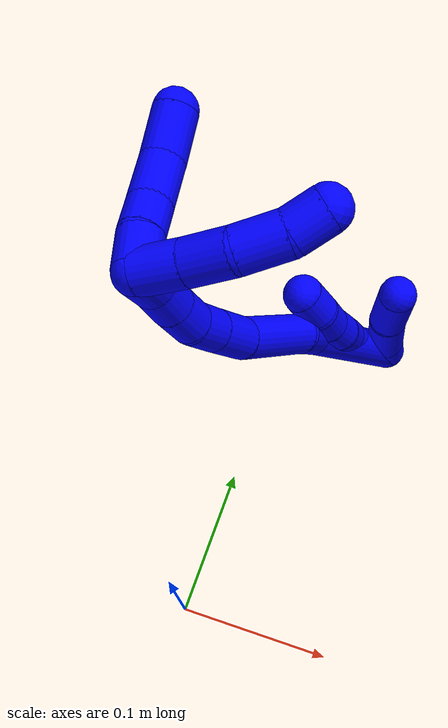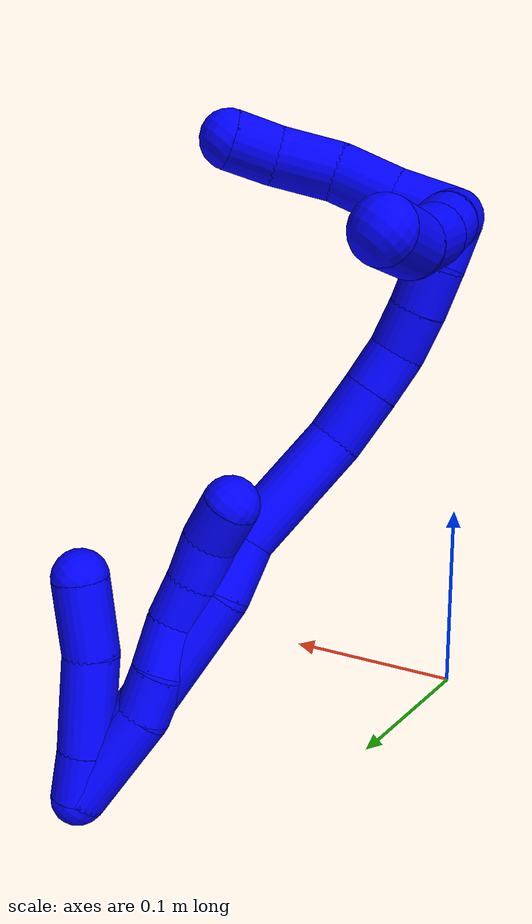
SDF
<sdf version="1.7">
 <world name="default">
  <plugin name="TubeGeneratorPlugin" filename="libtube_generator_plugin.so"/>
  <model name="photoneo_s_sensor">
   <static>1</static>
   <pose>0 0 2 1.57079 1.57079 3.14159</pose>
   <link name="link">
    <inertial><mass>0.1</mass></inertial>
    <sensor name="sensor" type="depth">
     <update_rate>30</update_rate>
     <camera>
      <horizontal_fov>1.22</horizontal_fov>
      <image><width>1920</width><height>1200</height><format>B8G8R8</format></image>
      <clip><near>0.1</near><far>4</far></clip>
      <depth_camera><output>points</output></depth_camera>
     </camera>
     <plugin name="camera_plugin" filename="libgazebo_ros_depth_camera.so">
      <baseline>0.2</baseline>
      <alwaysOn>1</alwaysOn>
      <updateRate>0.0</updateRate>
      <cameraName>camera_ir</cameraName>
      <imageTopicName>/camera/color/image_raw</imageTopicName>
      <cameraInfoTopicName>/camera/color/camera_info</cameraInfoTopicName>
      <depthImageTopicName>/camera/depth/image_raw</depthImageTopicName>
      <depthImageCameraInfoTopicName>/camera/depth/camera_info</depthImageCameraInfoTopicName>
      <pointCloudTopicName>/camera/depth/points</pointCloudTopicName>
      <frameName>fr_optical</frameName>
      <pointCloudCutoff>0.1</pointCloudCutoff>
      <pointCloudCutoffMax>2.0</pointCloudCutoffMax>
      <distortionK1>0</distortionK1>
      <distortionK2>0</distortionK2>
      <distortionK3>0</distortionK3>
      <distortionT1>0</distortionT1>
      <distortionT2>0</distortionT2>
      <CxPrime>0</CxPrime>
      <Cx>0</Cx>
      <Cy>0</Cy>
      <focalLength>0</focalLength>
      <hackBaseline>0</hackBaseline>
     </plugin>
    </sensor>
   </link>
  </model>
  <gravity>0 0 -9.8</gravity>
  <magnetic_field>6e-06 2.3e-05 -4.2e-05</magnetic_field>
  <atmosphere type="adiabatic"/>
  <physics name="default_physics" default="0" type="ode">
   <max_step_size>0.003</max_step_size>
   <real_time_factor>1</real_time_factor>
   <real_time_update_rate>1000</real_time_update_rate>
   <max_contacts>10000</max_contacts>
   <ode>
    <solver>
     <type>quick</type>
     <iters>100</iters>
     <sor>1.3</sor>
     <use_dynamic_moi_rescaling>0</use_dynamic_moi_rescaling>
    </solver>
    <constraints>
     <contact_max_correcting_vel>0</contact_max_correcting_vel>
     <contact_surface_layer>0.001</contact_surface_layer>
     <cfm>0</cfm>
     <erp>0.2</erp>
    </constraints>
   </ode>
  </physics>
  <scene><ambient>0.4 0.4 0.4 1</ambient><background>0.7 0.7 0.7 1</background><shadows>0</shadows></scene>
  <audio><device>default</device></audio>
  <spherical_coordinates>
   <surface_model>EARTH_WGS84</surface_model>
   <latitude_deg>0</latitude_deg>
   <longitude_deg>0</longitude_deg>
   <elevation>0</elevation>
   <heading_deg>0</heading_deg>
  </spherical_coordinates>
  <model name="bin">
   <static>1</static>
   <link name="bottom">
    <collision name="collision-bottom">
     <pose>0 0 -0.01 0 -0 0</pose>
     <geometry><box><size>0.8 0.6 0.02</size></box></geometry>
     <surface>
      <friction><ode><mu>100</mu><mu2>100</mu2></ode></friction>
      <contact><collide_bitmask>65535</collide_bitmask></contact>
     </surface>
    </collision>
   </link>
   <link name="west_wall">
    <collision name="collision-west_wall">
     <pose>-0.41 0 0.1 0 -0 0</pose>
     <geometry><box><size>0.02 0.6 0.2</size></box></geometry>
     <surface>
      <friction><ode><mu>100</mu><mu2>100</mu2></ode></friction>
      <contact><collide_bitmask>65535</collide_bitmask></contact>
     </surface>
    </collision>
   </link>
   <link name="east_wall">
    <collision name="collision-east_wall">
     <pose>0.41 0 0.1 0 -0 0</pose>
     <geometry><box><size>0.02 0.6 0.2</size></box></geometry>
     <surface>
      <friction><ode><mu>100</mu><mu2>100</mu2></ode></friction>
      <contact><collide_bitmask>65535</collide_bitmask></contact>
     </surface>
    </collision>
   </link>
   <link name="south_wall">
    <collision name="collision-south_wall">
     <pose>0 -0.31 0.1 0 -0 0</pose>
     <geometry><box><size>0.8 0.02 0.2</size></box></geometry>
     <surface>
      <friction><ode><mu>100</mu><mu2>100</mu2></ode></friction>
      <contact><collide_bitmask>65535</collide_bitmask></contact>
     </surface>
    </collision>
   </link>
   <link name="north_wall">
    <collision name="collision-north_wall">
     <pose>0 0.31 0.1 0 -0 0</pose>
     <geometry><box><size>0.8 0.02 0.2</size></box></geometry>
     <surface>
      <friction><ode><mu>100</mu><mu2>100</mu2></ode></friction>
      <contact><collide_bitmask>65535</collide_bitmask></contact>
     </surface>
    </collision>
   </link>
  </model>
  <model name="1">
   <static>0</static>
   <link name="1">
    <collision name="collision-cylinder-e_1_2_8">
     <pose>-0.001946 -0.00057 -0.023154 3.11698 -0.083811 -2.57068</pose>
     <geometry><cylinder><radius>0.0125</radius><length>0.046484</length></cylinder></geometry>
     <surface>
      <friction><ode><mu>1.16</mu><mu2>1.16</mu2><slip1>0</slip1><slip2>0</slip2></ode></friction>
      <contact><ode><kp>1e+06</kp><kd>1</kd><max_vel>0</max_vel><min_depth>0.001</min_depth></ode></contact>
     </surface>
    </collision>
    <visual name="visual-cylinder-e_1_2_8">
     <pose>-0.001946 -0.00057 -0.023154 3.11698 -0.083811 -2.57068</pose>
     <geometry><cylinder><radius>0.0125</radius><length>0.046484</length></cylinder></geometry>
     <material><ambient>0 0 1 1</ambient></material>
    </visual>
    <collision name="collision-cylinder-e_2_8_9">
     <pose>-0.006105 -0.00391 -0.05616 2.86751 -0.213002 -1.31889</pose>
     <geometry><cylinder><radius>0.0125</radius><length>0.020943</length></cylinder></geometry>
     <surface>
      <friction><ode><mu>1.16</mu><mu2>1.16</mu2><slip1>0</slip1><slip2>0</slip2></ode></friction>
      <contact><ode><kp>1e+06</kp><kd>1</kd><max_vel>0</max_vel><min_depth>0.001</min_depth></ode></contact>
     </surface>
    </collision>
    <visual name="visual-cylinder-e_2_8_9">
     <pose>-0.006105 -0.00391 -0.05616 2.86751 -0.213002 -1.31889</pose>
     <geometry><cylinder><radius>0.0125</radius><length>0.020943</length></cylinder></geometry>
     <material><ambient>0 0 1 1</ambient></material>
    </visual>
    <collision name="collision-cylinder-e_3_9_10">
     <pose>-0.009362 -0.010984 -0.076369 2.74777 -0.092739 -0.457074</pose>
     <geometry><cylinder><radius>0.0125</radius><length>0.022527</length></cylinder></geometry>
     <surface>
      <friction><ode><mu>1.16</mu><mu2>1.16</mu2><slip1>0</slip1><slip2>0</slip2></ode></friction>
      <contact><ode><kp>1e+06</kp><kd>1</kd><max_vel>0</max_vel><min_depth>0.001</min_depth></ode></contact>
     </surface>
    </collision>
    <visual name="visual-cylinder-e_3_9_10">
     <pose>-0.009362 -0.010984 -0.076369 2.74777 -0.092739 -0.457074</pose>
     <geometry><cylinder><radius>0.0125</radius><length>0.022527</length></cylinder></geometry>
     <material><ambient>0 0 1 1</ambient></material>
    </visual>
    <collision name="collision-cylinder-e_4_10_11">
     <pose>-0.012641 -0.017098 -0.096312 2.95487 -0.225356 -1.75906</pose>
     <geometry><cylinder><radius>0.0125</radius><length>0.020016</length></cylinder></geometry>
     <surface>
      <friction><ode><mu>1.16</mu><mu2>1.16</mu2><slip1>0</slip1><slip2>0</slip2></ode></friction>
      <contact><ode><kp>1e+06</kp><kd>1</kd><max_vel>0</max_vel><min_depth>0.001</min_depth></ode></contact>
     </surface>
    </collision>
    <visual name="visual-cylinder-e_4_10_11">
     <pose>-0.012641 -0.017098 -0.096312 2.95487 -0.225356 -1.75906</pose>
     <geometry><cylinder><radius>0.0125</radius><length>0.020016</length></cylinder></geometry>
     <material><ambient>0 0 1 1</ambient></material>
    </visual>
    <collision name="collision-cylinder-e_5_11_12">
     <pose>-0.018052 -0.021183 -0.115109 2.89961 -0.322832 -1.85885</pose>
     <geometry><cylinder><radius>0.0125</radius><length>0.020011</length></cylinder></geometry>
     <surface>
      <friction><ode><mu>1.16</mu><mu2>1.16</mu2><slip1>0</slip1><slip2>0</slip2></ode></friction>
      <contact><ode><kp>1e+06</kp><kd>1</kd><max_vel>0</max_vel><min_depth>0.001</min_depth></ode></contact>
     </surface>
    </collision>
    <visual name="visual-cylinder-e_5_11_12">
     <pose>-0.018052 -0.021183 -0.115109 2.89961 -0.322832 -1.85885</pose>
     <geometry><cylinder><radius>0.0125</radius><length>0.020011</length></cylinder></geometry>
     <material><ambient>0 0 1 1</ambient></material>
    </visual>
    <collision name="collision-cylinder-e_6_12_6">
     <pose>-0.025838 -0.023355 -0.133204 -3.13024 -0.478888 3.09508</pose>
     <geometry><cylinder><radius>0.0125</radius><length>0.020018</length></cylinder></geometry>
     <surface>
      <friction><ode><mu>1.16</mu><mu2>1.16</mu2><slip1>0</slip1><slip2>0</slip2></ode></friction>
      <contact><ode><kp>1e+06</kp><kd>1</kd><max_vel>0</max_vel><min_depth>0.001</min_depth></ode></contact>
     </surface>
    </collision>
    <visual name="visual-cylinder-e_6_12_6">
     <pose>-0.025838 -0.023355 -0.133204 -3.13024 -0.478888 3.09508</pose>
     <geometry><cylinder><radius>0.0125</radius><length>0.020018</length></cylinder></geometry>
     <material><ambient>0 0 1 1</ambient></material>
    </visual>
    <collision name="collision-cylinder-e_1_2_13">
     <pose>-0.003365 -0.004861 -0.009448 2.66637 -0.306687 -1.13603</pose>
     <geometry><cylinder><radius>0.0125</radius><length>0.022291</length></cylinder></geometry>
     <surface>
      <friction><ode><mu>1.16</mu><mu2>1.16</mu2><slip1>0</slip1><slip2>0</slip2></ode></friction>
      <contact><ode><kp>1e+06</kp><kd>1</kd><max_vel>0</max_vel><min_depth>0.001</min_depth></ode></contact>
     </surface>
    </collision>
    <visual name="visual-cylinder-e_1_2_13">
     <pose>-0.003365 -0.004861 -0.009448 2.66637 -0.306687 -1.13603</pose>
     <geometry><cylinder><radius>0.0125</radius><length>0.022291</length></cylinder></geometry>
     <material><ambient>0 0 1 1</ambient></material>
    </visual>
    <collision name="collision-cylinder-e_2_13_14">
     <pose>-0.013933 -0.020435 -0.036323 2.59043 -0.338599 -1.08743</pose>
     <geometry><cylinder><radius>0.0125</radius><length>0.043375</length></cylinder></geometry>
     <surface>
      <friction><ode><mu>1.16</mu><mu2>1.16</mu2><slip1>0</slip1><slip2>0</slip2></ode></friction>
      <contact><ode><kp>1e+06</kp><kd>1</kd><max_vel>0</max_vel><min_depth>0.001</min_depth></ode></contact>
     </surface>
    </collision>
    <visual name="visual-cylinder-e_2_13_14">
     <pose>-0.013933 -0.020435 -0.036323 2.59043 -0.338599 -1.08743</pose>
     <geometry><cylinder><radius>0.0125</radius><length>0.043375</length></cylinder></geometry>
     <material><ambient>0 0 1 1</ambient></material>
    </visual>
    <collision name="collision-cylinder-e_3_14_5">
     <pose>-0.028731 -0.041191 -0.065419 2.43095 -0.458218 -1.12216</pose>
     <geometry><cylinder><radius>0.0125</radius><length>0.034334</length></cylinder></geometry>
     <surface>
      <friction><ode><mu>1.16</mu><mu2>1.16</mu2><slip1>0</slip1><slip2>0</slip2></ode></friction>
      <contact><ode><kp>1e+06</kp><kd>1</kd><max_vel>0</max_vel><min_depth>0.001</min_depth></ode></contact>
     </surface>
    </collision>
    <visual name="visual-cylinder-e_3_14_5">
     <pose>-0.028731 -0.041191 -0.065419 2.43095 -0.458218 -1.12216</pose>
     <geometry><cylinder><radius>0.0125</radius><length>0.034334</length></cylinder></geometry>
     <material><ambient>0 0 1 1</ambient></material>
    </visual>
    <collision name="collision-cylinder-e_1_2_15">
     <pose>-0.003349 -0.004188 -0.054208 3.06449 -0.061513 -1.3466</pose>
     <geometry><cylinder><radius>0.0125</radius><length>0.108945</length></cylinder></geometry>
     <surface>
      <friction><ode><mu>1.16</mu><mu2>1.16</mu2><slip1>0</slip1><slip2>0</slip2></ode></friction>
      <contact><ode><kp>1e+06</kp><kd>1</kd><max_vel>0</max_vel><min_depth>0.001</min_depth></ode></contact>
     </surface>
    </collision>
    <visual name="visual-cylinder-e_1_2_15">
     <pose>-0.003349 -0.004188 -0.054208 3.06449 -0.061513 -1.3466</pose>
     <geometry><cylinder><radius>0.0125</radius><length>0.108945</length></cylinder></geometry>
     <material><ambient>0 0 1 1</ambient></material>
    </visual>
    <collision name="collision-cylinder-e_2_15_16">
     <pose>-0.006759 -0.012553 -0.120997 2.82105 -0.004677 -0.028927</pose>
     <geometry><cylinder><radius>0.0125</radius><length>0.026513</length></cylinder></geometry>
     <surface>
      <friction><ode><mu>1.16</mu><mu2>1.16</mu2><slip1>0</slip1><slip2>0</slip2></ode></friction>
      <contact><ode><kp>1e+06</kp><kd>1</kd><max_vel>0</max_vel><min_depth>0.001</min_depth></ode></contact>
     </surface>
    </collision>
    <visual name="visual-cylinder-e_2_15_16">
     <pose>-0.006759 -0.012553 -0.120997 2.82105 -0.004677 -0.028927</pose>
     <geometry><cylinder><radius>0.0125</radius><length>0.026513</length></cylinder></geometry>
     <material><ambient>0 0 1 1</ambient></material>
    </visual>
    <collision name="collision-cylinder-e_3_16_17">
     <pose>-0.004109 -0.017092 -0.162267 3.12897 0.094247 2.87542</pose>
     <geometry><cylinder><radius>0.0125</radius><length>0.05764</length></cylinder></geometry>
     <surface>
      <friction><ode><mu>1.16</mu><mu2>1.16</mu2><slip1>0</slip1><slip2>0</slip2></ode></friction>
      <contact><ode><kp>1e+06</kp><kd>1</kd><max_vel>0</max_vel><min_depth>0.001</min_depth></ode></contact>
     </surface>
    </collision>
    <visual name="visual-cylinder-e_3_16_17">
     <pose>-0.004109 -0.017092 -0.162267 3.12897 0.094247 2.87542</pose>
     <geometry><cylinder><radius>0.0125</radius><length>0.05764</length></cylinder></geometry>
     <material><ambient>0 0 1 1</ambient></material>
    </visual>
    <collision name="collision-cylinder-e_4_17_18">
     <pose>-0.003073 -0.018082 -0.204228 3.09429 -0.125504 -2.4214</pose>
     <geometry><cylinder><radius>0.0125</radius><length>0.026782</length></cylinder></geometry>
     <surface>
      <friction><ode><mu>1.16</mu><mu2>1.16</mu2><slip1>0</slip1><slip2>0</slip2></ode></friction>
      <contact><ode><kp>1e+06</kp><kd>1</kd><max_vel>0</max_vel><min_depth>0.001</min_depth></ode></contact>
     </surface>
    </collision>
    <visual name="visual-cylinder-e_4_17_18">
     <pose>-0.003073 -0.018082 -0.204228 3.09429 -0.125504 -2.4214</pose>
     <geometry><cylinder><radius>0.0125</radius><length>0.026782</length></cylinder></geometry>
     <material><ambient>0 0 1 1</ambient></material>
    </visual>
    <collision name="collision-cylinder-e_5_18_19">
     <pose>-0.006222 -0.019421 -0.227394 3.06993 -0.147397 -2.23765</pose>
     <geometry><cylinder><radius>0.0125</radius><length>0.02006</length></cylinder></geometry>
     <surface>
      <friction><ode><mu>1.16</mu><mu2>1.16</mu2><slip1>0</slip1><slip2>0</slip2></ode></friction>
      <contact><ode><kp>1e+06</kp><kd>1</kd><max_vel>0</max_vel><min_depth>0.001</min_depth></ode></contact>
     </surface>
    </collision>
    <visual name="visual-cylinder-e_5_18_19">
     <pose>-0.006222 -0.019421 -0.227394 3.06993 -0.147397 -2.23765</pose>
     <geometry><cylinder><radius>0.0125</radius><length>0.02006</length></cylinder></geometry>
     <material><ambient>0 0 1 1</ambient></material>
    </visual>
    <collision name="collision-cylinder-e_6_19_20">
     <pose>-0.011613 -0.021351 -0.246425 3.00886 -0.401951 -2.51087</pose>
     <geometry><cylinder><radius>0.0125</radius><length>0.020028</length></cylinder></geometry>
     <surface>
      <friction><ode><mu>1.16</mu><mu2>1.16</mu2><slip1>0</slip1><slip2>0</slip2></ode></friction>
      <contact><ode><kp>1e+06</kp><kd>1</kd><max_vel>0</max_vel><min_depth>0.001</min_depth></ode></contact>
     </surface>
    </collision>
    <visual name="visual-cylinder-e_6_19_20">
     <pose>-0.011613 -0.021351 -0.246425 3.00886 -0.401951 -2.51087</pose>
     <geometry><cylinder><radius>0.0125</radius><length>0.020028</length></cylinder></geometry>
     <material><ambient>0 0 1 1</ambient></material>
    </visual>
    <collision name="collision-cylinder-e_7_20_21">
     <pose>-0.019744 -0.024367 -0.264459 2.94244 -0.434521 -2.29159</pose>
     <geometry><cylinder><radius>0.0125</radius><length>0.020017</length></cylinder></geometry>
     <surface>
      <friction><ode><mu>1.16</mu><mu2>1.16</mu2><slip1>0</slip1><slip2>0</slip2></ode></friction>
      <contact><ode><kp>1e+06</kp><kd>1</kd><max_vel>0</max_vel><min_depth>0.001</min_depth></ode></contact>
     </surface>
    </collision>
    <visual name="visual-cylinder-e_7_20_21">
     <pose>-0.019744 -0.024367 -0.264459 2.94244 -0.434521 -2.29159</pose>
     <geometry><cylinder><radius>0.0125</radius><length>0.020017</length></cylinder></geometry>
     <material><ambient>0 0 1 1</ambient></material>
    </visual>
    <collision name="collision-cylinder-e_8_21_1">
     <pose>-0.026602 -0.028808 -0.28264 2.86393 -0.267445 -1.53285</pose>
     <geometry><cylinder><radius>0.0125</radius><length>0.020016</length></cylinder></geometry>
     <surface>
      <friction><ode><mu>1.16</mu><mu2>1.16</mu2><slip1>0</slip1><slip2>0</slip2></ode></friction>
      <contact><ode><kp>1e+06</kp><kd>1</kd><max_vel>0</max_vel><min_depth>0.001</min_depth></ode></contact>
     </surface>
    </collision>
    <visual name="visual-cylinder-e_8_21_1">
     <pose>-0.026602 -0.028808 -0.28264 2.86393 -0.267445 -1.53285</pose>
     <geometry><cylinder><radius>0.0125</radius><length>0.020016</length></cylinder></geometry>
     <material><ambient>0 0 1 1</ambient></material>
    </visual>
    <collision name="collision-cylinder-e_1_1_22">
     <pose>-0.032132 -0.043588 -0.28747 1.21906 -0.219607 -0.15365</pose>
     <geometry><cylinder><radius>0.0125</radius><length>0.026486</length></cylinder></geometry>
     <surface>
      <friction><ode><mu>1.16</mu><mu2>1.16</mu2><slip1>0</slip1><slip2>0</slip2></ode></friction>
      <contact><ode><kp>1e+06</kp><kd>1</kd><max_vel>0</max_vel><min_depth>0.001</min_depth></ode></contact>
     </surface>
    </collision>
    <visual name="visual-cylinder-e_1_1_22">
     <pose>-0.032132 -0.043588 -0.28747 1.21906 -0.219607 -0.15365</pose>
     <geometry><cylinder><radius>0.0125</radius><length>0.026486</length></cylinder></geometry>
     <material><ambient>0 0 1 1</ambient></material>
    </visual>
    <collision name="collision-cylinder-e_2_22_23">
     <pose>-0.038242 -0.067987 -0.279749 1.31044 -0.248832 -0.191625</pose>
     <geometry><cylinder><radius>0.0125</radius><length>0.026195</length></cylinder></geometry>
     <surface>
      <friction><ode><mu>1.16</mu><mu2>1.16</mu2><slip1>0</slip1><slip2>0</slip2></ode></friction>
      <contact><ode><kp>1e+06</kp><kd>1</kd><max_vel>0</max_vel><min_depth>0.001</min_depth></ode></contact>
     </surface>
    </collision>
    <visual name="visual-cylinder-e_2_22_23">
     <pose>-0.038242 -0.067987 -0.279749 1.31044 -0.248832 -0.191625</pose>
     <geometry><cylinder><radius>0.0125</radius><length>0.026195</length></cylinder></geometry>
     <material><ambient>0 0 1 1</ambient></material>
    </visual>
    <collision name="collision-cylinder-e_3_23_24">
     <pose>-0.046251 -0.091199 -0.270575 1.07597 -0.367184 -0.220692</pose>
     <geometry><cylinder><radius>0.0125</radius><length>0.02665</length></cylinder></geometry>
     <surface>
      <friction><ode><mu>1.16</mu><mu2>1.16</mu2><slip1>0</slip1><slip2>0</slip2></ode></friction>
      <contact><ode><kp>1e+06</kp><kd>1</kd><max_vel>0</max_vel><min_depth>0.001</min_depth></ode></contact>
     </surface>
    </collision>
    <visual name="visual-cylinder-e_3_23_24">
     <pose>-0.046251 -0.091199 -0.270575 1.07597 -0.367184 -0.220692</pose>
     <geometry><cylinder><radius>0.0125</radius><length>0.02665</length></cylinder></geometry>
     <material><ambient>0 0 1 1</ambient></material>
    </visual>
    <collision name="collision-cylinder-e_4_24_4">
     <pose>-0.057113 -0.109369 -0.260466 1.04387 -0.628708 -0.369723</pose>
     <geometry><cylinder><radius>0.0125</radius><length>0.020669</length></cylinder></geometry>
     <surface>
      <friction><ode><mu>1.16</mu><mu2>1.16</mu2><slip1>0</slip1><slip2>0</slip2></ode></friction>
      <contact><ode><kp>1e+06</kp><kd>1</kd><max_vel>0</max_vel><min_depth>0.001</min_depth></ode></contact>
     </surface>
    </collision>
    <visual name="visual-cylinder-e_4_24_4">
     <pose>-0.057113 -0.109369 -0.260466 1.04387 -0.628708 -0.369723</pose>
     <geometry><cylinder><radius>0.0125</radius><length>0.020669</length></cylinder></geometry>
     <material><ambient>0 0 1 1</ambient></material>
    </visual>
    <collision name="collision-cylinder-e_1_1_25">
     <pose>-0.038791 -0.028096 -0.287736 -0.676015 -1.05855 0.405559</pose>
     <geometry><cylinder><radius>0.0125</radius><length>0.021898</length></cylinder></geometry>
     <surface>
      <friction><ode><mu>1.16</mu><mu2>1.16</mu2><slip1>0</slip1><slip2>0</slip2></ode></friction>
      <contact><ode><kp>1e+06</kp><kd>1</kd><max_vel>0</max_vel><min_depth>0.001</min_depth></ode></contact>
     </surface>
    </collision>
    <visual name="visual-cylinder-e_1_1_25">
     <pose>-0.038791 -0.028096 -0.287736 -0.676015 -1.05855 0.405559</pose>
     <geometry><cylinder><radius>0.0125</radius><length>0.021898</length></cylinder></geometry>
     <material><ambient>0 0 1 1</ambient></material>
    </visual>
    <collision name="collision-cylinder-e_2_25_26">
     <pose>-0.05638 -0.021786 -0.278227 -0.506423 -0.92308 0.255996</pose>
     <geometry><cylinder><radius>0.0125</radius><length>0.020177</length></cylinder></geometry>
     <surface>
      <friction><ode><mu>1.16</mu><mu2>1.16</mu2><slip1>0</slip1><slip2>0</slip2></ode></friction>
      <contact><ode><kp>1e+06</kp><kd>1</kd><max_vel>0</max_vel><min_depth>0.001</min_depth></ode></contact>
     </surface>
    </collision>
    <visual name="visual-cylinder-e_2_25_26">
     <pose>-0.05638 -0.021786 -0.278227 -0.506423 -0.92308 0.255996</pose>
     <geometry><cylinder><radius>0.0125</radius><length>0.020177</length></cylinder></geometry>
     <material><ambient>0 0 1 1</ambient></material>
    </visual>
    <collision name="collision-cylinder-e_3_26_27">
     <pose>-0.076775 -0.015656 -0.266104 -0.43715 -1.02471 0.248581</pose>
     <geometry><cylinder><radius>0.0125</radius><length>0.028903</length></cylinder></geometry>
     <surface>
      <friction><ode><mu>1.16</mu><mu2>1.16</mu2><slip1>0</slip1><slip2>0</slip2></ode></friction>
      <contact><ode><kp>1e+06</kp><kd>1</kd><max_vel>0</max_vel><min_depth>0.001</min_depth></ode></contact>
     </surface>
    </collision>
    <visual name="visual-cylinder-e_3_26_27">
     <pose>-0.076775 -0.015656 -0.266104 -0.43715 -1.02471 0.248581</pose>
     <geometry><cylinder><radius>0.0125</radius><length>0.028903</length></cylinder></geometry>
     <material><ambient>0 0 1 1</ambient></material>
    </visual>
    <collision name="collision-cylinder-e_4_27_3">
     <pose>-0.103085 -0.012166 -0.25536 -0.078983 -1.29458 0.05972</pose>
     <geometry><cylinder><radius>0.0125</radius><length>0.029022</length></cylinder></geometry>
     <surface>
      <friction><ode><mu>1.16</mu><mu2>1.16</mu2><slip1>0</slip1><slip2>0</slip2></ode></friction>
      <contact><ode><kp>1e+06</kp><kd>1</kd><max_vel>0</max_vel><min_depth>0.001</min_depth></ode></contact>
     </surface>
    </collision>
    <visual name="visual-cylinder-e_4_27_3">
     <pose>-0.103085 -0.012166 -0.25536 -0.078983 -1.29458 0.05972</pose>
     <geometry><cylinder><radius>0.0125</radius><length>0.029022</length></cylinder></geometry>
     <material><ambient>0 0 1 1</ambient></material>
    </visual>
    <collision name="collision-sphere-3">
     <pose>-0.117046 -0.011854 -0.251415 0 -0 0</pose>
     <geometry><sphere><radius>0.0125</radius></sphere></geometry>
     <surface>
      <friction><ode><mu>1.16</mu><mu2>1.16</mu2><slip1>0</slip1><slip2>0</slip2></ode></friction>
      <contact><ode><kp>1e+06</kp><kd>1</kd><max_vel>0</max_vel><min_depth>0.001</min_depth></ode></contact>
     </surface>
    </collision>
    <visual name="visual-sphere-3">
     <pose>-0.117046 -0.011854 -0.251415 0 -0 0</pose>
     <geometry><sphere><radius>0.0125</radius></sphere></geometry>
     <material><ambient>0 0 1 1</ambient></material>
    </visual>
    <collision name="collision-sphere-27">
     <pose>-0.089124 -0.012478 -0.259305 0 -0 0</pose>
     <geometry><sphere><radius>0.0125</radius></sphere></geometry>
     <surface>
      <friction><ode><mu>1.16</mu><mu2>1.16</mu2><slip1>0</slip1><slip2>0</slip2></ode></friction>
      <contact><ode><kp>1e+06</kp><kd>1</kd><max_vel>0</max_vel><min_depth>0.001</min_depth></ode></contact>
     </surface>
    </collision>
    <visual name="visual-sphere-27">
     <pose>-0.089124 -0.012478 -0.259305 0 -0 0</pose>
     <geometry><sphere><radius>0.0125</radius></sphere></geometry>
     <material><ambient>0 0 1 1</ambient></material>
    </visual>
    <collision name="collision-sphere-26">
     <pose>-0.064425 -0.018833 -0.272904 0 -0 0</pose>
     <geometry><sphere><radius>0.0125</radius></sphere></geometry>
     <surface>
      <friction><ode><mu>1.16</mu><mu2>1.16</mu2><slip1>0</slip1><slip2>0</slip2></ode></friction>
      <contact><ode><kp>1e+06</kp><kd>1</kd><max_vel>0</max_vel><min_depth>0.001</min_depth></ode></contact>
     </surface>
    </collision>
    <visual name="visual-sphere-26">
     <pose>-0.064425 -0.018833 -0.272904 0 -0 0</pose>
     <geometry><sphere><radius>0.0125</radius></sphere></geometry>
     <material><ambient>0 0 1 1</ambient></material>
    </visual>
    <collision name="collision-sphere-25">
     <pose>-0.048334 -0.024739 -0.28355 0 -0 0</pose>
     <geometry><sphere><radius>0.0125</radius></sphere></geometry>
     <surface>
      <friction><ode><mu>1.16</mu><mu2>1.16</mu2><slip1>0</slip1><slip2>0</slip2></ode></friction>
      <contact><ode><kp>1e+06</kp><kd>1</kd><max_vel>0</max_vel><min_depth>0.001</min_depth></ode></contact>
     </surface>
    </collision>
    <visual name="visual-sphere-25">
     <pose>-0.048334 -0.024739 -0.28355 0 -0 0</pose>
     <geometry><sphere><radius>0.0125</radius></sphere></geometry>
     <material><ambient>0 0 1 1</ambient></material>
    </visual>
    <collision name="collision-sphere-4">
     <pose>-0.06319 -0.116593 -0.256263 0 -0 0</pose>
     <geometry><sphere><radius>0.0125</radius></sphere></geometry>
     <surface>
      <friction><ode><mu>1.16</mu><mu2>1.16</mu2><slip1>0</slip1><slip2>0</slip2></ode></friction>
      <contact><ode><kp>1e+06</kp><kd>1</kd><max_vel>0</max_vel><min_depth>0.001</min_depth></ode></contact>
     </surface>
    </collision>
    <visual name="visual-sphere-4">
     <pose>-0.06319 -0.116593 -0.256263 0 -0 0</pose>
     <geometry><sphere><radius>0.0125</radius></sphere></geometry>
     <material><ambient>0 0 1 1</ambient></material>
    </visual>
    <collision name="collision-sphere-24">
     <pose>-0.051035 -0.102144 -0.264669 0 -0 0</pose>
     <geometry><sphere><radius>0.0125</radius></sphere></geometry>
     <surface>
      <friction><ode><mu>1.16</mu><mu2>1.16</mu2><slip1>0</slip1><slip2>0</slip2></ode></friction>
      <contact><ode><kp>1e+06</kp><kd>1</kd><max_vel>0</max_vel><min_depth>0.001</min_depth></ode></contact>
     </surface>
    </collision>
    <visual name="visual-sphere-24">
     <pose>-0.051035 -0.102144 -0.264669 0 -0 0</pose>
     <geometry><sphere><radius>0.0125</radius></sphere></geometry>
     <material><ambient>0 0 1 1</ambient></material>
    </visual>
    <collision name="collision-sphere-23">
     <pose>-0.041468 -0.080254 -0.276481 0 -0 0</pose>
     <geometry><sphere><radius>0.0125</radius></sphere></geometry>
     <surface>
      <friction><ode><mu>1.16</mu><mu2>1.16</mu2><slip1>0</slip1><slip2>0</slip2></ode></friction>
      <contact><ode><kp>1e+06</kp><kd>1</kd><max_vel>0</max_vel><min_depth>0.001</min_depth></ode></contact>
     </surface>
    </collision>
    <visual name="visual-sphere-23">
     <pose>-0.041468 -0.080254 -0.276481 0 -0 0</pose>
     <geometry><sphere><radius>0.0125</radius></sphere></geometry>
     <material><ambient>0 0 1 1</ambient></material>
    </visual>
    <collision name="collision-sphere-22">
     <pose>-0.035017 -0.055721 -0.283017 0 -0 0</pose>
     <geometry><sphere><radius>0.0125</radius></sphere></geometry>
     <surface>
      <friction><ode><mu>1.16</mu><mu2>1.16</mu2><slip1>0</slip1><slip2>0</slip2></ode></friction>
      <contact><ode><kp>1e+06</kp><kd>1</kd><max_vel>0</max_vel><min_depth>0.001</min_depth></ode></contact>
     </surface>
    </collision>
    <visual name="visual-sphere-22">
     <pose>-0.035017 -0.055721 -0.283017 0 -0 0</pose>
     <geometry><sphere><radius>0.0125</radius></sphere></geometry>
     <material><ambient>0 0 1 1</ambient></material>
    </visual>
    <collision name="collision-sphere-1">
     <pose>-0.029247 -0.031454 -0.291923 0 -0 0</pose>
     <geometry><sphere><radius>0.0125</radius></sphere></geometry>
     <surface>
      <friction><ode><mu>1.16</mu><mu2>1.16</mu2><slip1>0</slip1><slip2>0</slip2></ode></friction>
      <contact><ode><kp>1e+06</kp><kd>1</kd><max_vel>0</max_vel><min_depth>0.001</min_depth></ode></contact>
     </surface>
    </collision>
    <visual name="visual-sphere-1">
     <pose>-0.029247 -0.031454 -0.291923 0 -0 0</pose>
     <geometry><sphere><radius>0.0125</radius></sphere></geometry>
     <material><ambient>0 0 1 1</ambient></material>
    </visual>
    <collision name="collision-sphere-21">
     <pose>-0.023957 -0.026163 -0.273358 0 -0 0</pose>
     <geometry><sphere><radius>0.0125</radius></sphere></geometry>
     <surface>
      <friction><ode><mu>1.16</mu><mu2>1.16</mu2><slip1>0</slip1><slip2>0</slip2></ode></friction>
      <contact><ode><kp>1e+06</kp><kd>1</kd><max_vel>0</max_vel><min_depth>0.001</min_depth></ode></contact>
     </surface>
    </collision>
    <visual name="visual-sphere-21">
     <pose>-0.023957 -0.026163 -0.273358 0 -0 0</pose>
     <geometry><sphere><radius>0.0125</radius></sphere></geometry>
     <material><ambient>0 0 1 1</ambient></material>
    </visual>
    <collision name="collision-sphere-12">
     <pose>-0.021226 -0.023456 -0.124321 0 -0 0</pose>
     <geometry><sphere><radius>0.0125</radius></sphere></geometry>
     <surface>
      <friction><ode><mu>1.16</mu><mu2>1.16</mu2><slip1>0</slip1><slip2>0</slip2></ode></friction>
      <contact><ode><kp>1e+06</kp><kd>1</kd><max_vel>0</max_vel><min_depth>0.001</min_depth></ode></contact>
     </surface>
    </collision>
    <visual name="visual-sphere-12">
     <pose>-0.021226 -0.023456 -0.124321 0 -0 0</pose>
     <geometry><sphere><radius>0.0125</radius></sphere></geometry>
     <material><ambient>0 0 1 1</ambient></material>
    </visual>
    <collision name="collision-sphere-11">
     <pose>-0.014877 -0.018909 -0.105897 0 -0 0</pose>
     <geometry><sphere><radius>0.0125</radius></sphere></geometry>
     <surface>
      <friction><ode><mu>1.16</mu><mu2>1.16</mu2><slip1>0</slip1><slip2>0</slip2></ode></friction>
      <contact><ode><kp>1e+06</kp><kd>1</kd><max_vel>0</max_vel><min_depth>0.001</min_depth></ode></contact>
     </surface>
    </collision>
    <visual name="visual-sphere-11">
     <pose>-0.014877 -0.018909 -0.105897 0 -0 0</pose>
     <geometry><sphere><radius>0.0125</radius></sphere></geometry>
     <material><ambient>0 0 1 1</ambient></material>
    </visual>
    <collision name="collision-sphere-10">
     <pose>-0.010405 -0.015287 -0.086726 0 -0 0</pose>
     <geometry><sphere><radius>0.0125</radius></sphere></geometry>
     <surface>
      <friction><ode><mu>1.16</mu><mu2>1.16</mu2><slip1>0</slip1><slip2>0</slip2></ode></friction>
      <contact><ode><kp>1e+06</kp><kd>1</kd><max_vel>0</max_vel><min_depth>0.001</min_depth></ode></contact>
     </surface>
    </collision>
    <visual name="visual-sphere-10">
     <pose>-0.010405 -0.015287 -0.086726 0 -0 0</pose>
     <geometry><sphere><radius>0.0125</radius></sphere></geometry>
     <material><ambient>0 0 1 1</ambient></material>
    </visual>
    <collision name="collision-sphere-9">
     <pose>-0.008319 -0.00668 -0.066013 0 -0 0</pose>
     <geometry><sphere><radius>0.0125</radius></sphere></geometry>
     <surface>
      <friction><ode><mu>1.16</mu><mu2>1.16</mu2><slip1>0</slip1><slip2>0</slip2></ode></friction>
      <contact><ode><kp>1e+06</kp><kd>1</kd><max_vel>0</max_vel><min_depth>0.001</min_depth></ode></contact>
     </surface>
    </collision>
    <visual name="visual-sphere-9">
     <pose>-0.008319 -0.00668 -0.066013 0 -0 0</pose>
     <geometry><sphere><radius>0.0125</radius></sphere></geometry>
     <material><ambient>0 0 1 1</ambient></material>
    </visual>
    <collision name="collision-sphere-2">
     <geometry><sphere><radius>0.0125</radius></sphere></geometry>
     <surface>
      <friction><ode><mu>1.16</mu><mu2>1.16</mu2><slip1>0</slip1><slip2>0</slip2></ode></friction>
      <contact><ode><kp>1e+06</kp><kd>1</kd><max_vel>0</max_vel><min_depth>0.001</min_depth></ode></contact>
     </surface>
    </collision>
    <visual name="visual-sphere-2">
     <geometry><sphere><radius>0.0125</radius></sphere></geometry>
     <material><ambient>0 0 1 1</ambient></material>
    </visual>
    <collision name="collision-sphere-19">
     <pose>-0.007695 -0.020131 -0.23729 0 -0 0</pose>
     <geometry><sphere><radius>0.0125</radius></sphere></geometry>
     <surface>
      <friction><ode><mu>1.16</mu><mu2>1.16</mu2><slip1>0</slip1><slip2>0</slip2></ode></friction>
      <contact><ode><kp>1e+06</kp><kd>1</kd><max_vel>0</max_vel><min_depth>0.001</min_depth></ode></contact>
     </surface>
    </collision>
    <visual name="visual-sphere-19">
     <pose>-0.007695 -0.020131 -0.23729 0 -0 0</pose>
     <geometry><sphere><radius>0.0125</radius></sphere></geometry>
     <material><ambient>0 0 1 1</ambient></material>
    </visual>
    <collision name="collision-sphere-8">
     <pose>-0.003891 -0.00114 -0.046307 0 -0 0</pose>
     <geometry><sphere><radius>0.0125</radius></sphere></geometry>
     <surface>
      <friction><ode><mu>1.16</mu><mu2>1.16</mu2><slip1>0</slip1><slip2>0</slip2></ode></friction>
      <contact><ode><kp>1e+06</kp><kd>1</kd><max_vel>0</max_vel><min_depth>0.001</min_depth></ode></contact>
     </surface>
    </collision>
    <visual name="visual-sphere-8">
     <pose>-0.003891 -0.00114 -0.046307 0 -0 0</pose>
     <geometry><sphere><radius>0.0125</radius></sphere></geometry>
     <material><ambient>0 0 1 1</ambient></material>
    </visual>
    <collision name="collision-sphere-6">
     <pose>-0.03045 -0.023255 -0.142087 0 -0 0</pose>
     <geometry><sphere><radius>0.0125</radius></sphere></geometry>
     <surface>
      <friction><ode><mu>1.16</mu><mu2>1.16</mu2><slip1>0</slip1><slip2>0</slip2></ode></friction>
      <contact><ode><kp>1e+06</kp><kd>1</kd><max_vel>0</max_vel><min_depth>0.001</min_depth></ode></contact>
     </surface>
    </collision>
    <visual name="visual-sphere-6">
     <pose>-0.03045 -0.023255 -0.142087 0 -0 0</pose>
     <geometry><sphere><radius>0.0125</radius></sphere></geometry>
     <material><ambient>0 0 1 1</ambient></material>
    </visual>
    <collision name="collision-sphere-13">
     <pose>-0.00673 -0.009723 -0.018896 0 -0 0</pose>
     <geometry><sphere><radius>0.0125</radius></sphere></geometry>
     <surface>
      <friction><ode><mu>1.16</mu><mu2>1.16</mu2><slip1>0</slip1><slip2>0</slip2></ode></friction>
      <contact><ode><kp>1e+06</kp><kd>1</kd><max_vel>0</max_vel><min_depth>0.001</min_depth></ode></contact>
     </surface>
    </collision>
    <visual name="visual-sphere-13">
     <pose>-0.00673 -0.009723 -0.018896 0 -0 0</pose>
     <geometry><sphere><radius>0.0125</radius></sphere></geometry>
     <material><ambient>0 0 1 1</ambient></material>
    </visual>
    <collision name="collision-sphere-14">
     <pose>-0.021137 -0.031148 -0.05375 0 -0 0</pose>
     <geometry><sphere><radius>0.0125</radius></sphere></geometry>
     <surface>
      <friction><ode><mu>1.16</mu><mu2>1.16</mu2><slip1>0</slip1><slip2>0</slip2></ode></friction>
      <contact><ode><kp>1e+06</kp><kd>1</kd><max_vel>0</max_vel><min_depth>0.001</min_depth></ode></contact>
     </surface>
    </collision>
    <visual name="visual-sphere-14">
     <pose>-0.021137 -0.031148 -0.05375 0 -0 0</pose>
     <geometry><sphere><radius>0.0125</radius></sphere></geometry>
     <material><ambient>0 0 1 1</ambient></material>
    </visual>
    <collision name="collision-sphere-5">
     <pose>-0.036325 -0.051234 -0.077088 0 -0 0</pose>
     <geometry><sphere><radius>0.0125</radius></sphere></geometry>
     <surface>
      <friction><ode><mu>1.16</mu><mu2>1.16</mu2><slip1>0</slip1><slip2>0</slip2></ode></friction>
      <contact><ode><kp>1e+06</kp><kd>1</kd><max_vel>0</max_vel><min_depth>0.001</min_depth></ode></contact>
     </surface>
    </collision>
    <visual name="visual-sphere-5">
     <pose>-0.036325 -0.051234 -0.077088 0 -0 0</pose>
     <geometry><sphere><radius>0.0125</radius></sphere></geometry>
     <material><ambient>0 0 1 1</ambient></material>
    </visual>
    <collision name="collision-sphere-15">
     <pose>-0.006697 -0.008376 -0.108416 0 -0 0</pose>
     <geometry><sphere><radius>0.0125</radius></sphere></geometry>
     <surface>
      <friction><ode><mu>1.16</mu><mu2>1.16</mu2><slip1>0</slip1><slip2>0</slip2></ode></friction>
      <contact><ode><kp>1e+06</kp><kd>1</kd><max_vel>0</max_vel><min_depth>0.001</min_depth></ode></contact>
     </surface>
    </collision>
    <visual name="visual-sphere-15">
     <pose>-0.006697 -0.008376 -0.108416 0 -0 0</pose>
     <geometry><sphere><radius>0.0125</radius></sphere></geometry>
     <material><ambient>0 0 1 1</ambient></material>
    </visual>
    <collision name="collision-sphere-16">
     <pose>-0.006821 -0.01673 -0.133578 0 -0 0</pose>
     <geometry><sphere><radius>0.0125</radius></sphere></geometry>
     <surface>
      <friction><ode><mu>1.16</mu><mu2>1.16</mu2><slip1>0</slip1><slip2>0</slip2></ode></friction>
      <contact><ode><kp>1e+06</kp><kd>1</kd><max_vel>0</max_vel><min_depth>0.001</min_depth></ode></contact>
     </surface>
    </collision>
    <visual name="visual-sphere-16">
     <pose>-0.006821 -0.01673 -0.133578 0 -0 0</pose>
     <geometry><sphere><radius>0.0125</radius></sphere></geometry>
     <material><ambient>0 0 1 1</ambient></material>
    </visual>
    <collision name="collision-sphere-17">
     <pose>-0.001397 -0.017454 -0.190957 0 -0 0</pose>
     <geometry><sphere><radius>0.0125</radius></sphere></geometry>
     <surface>
      <friction><ode><mu>1.16</mu><mu2>1.16</mu2><slip1>0</slip1><slip2>0</slip2></ode></friction>
      <contact><ode><kp>1e+06</kp><kd>1</kd><max_vel>0</max_vel><min_depth>0.001</min_depth></ode></contact>
     </surface>
    </collision>
    <visual name="visual-sphere-17">
     <pose>-0.001397 -0.017454 -0.190957 0 -0 0</pose>
     <geometry><sphere><radius>0.0125</radius></sphere></geometry>
     <material><ambient>0 0 1 1</ambient></material>
    </visual>
    <collision name="collision-sphere-18">
     <pose>-0.004749 -0.018711 -0.217499 0 -0 0</pose>
     <geometry><sphere><radius>0.0125</radius></sphere></geometry>
     <surface>
      <friction><ode><mu>1.16</mu><mu2>1.16</mu2><slip1>0</slip1><slip2>0</slip2></ode></friction>
      <contact><ode><kp>1e+06</kp><kd>1</kd><max_vel>0</max_vel><min_depth>0.001</min_depth></ode></contact>
     </surface>
    </collision>
    <visual name="visual-sphere-18">
     <pose>-0.004749 -0.018711 -0.217499 0 -0 0</pose>
     <geometry><sphere><radius>0.0125</radius></sphere></geometry>
     <material><ambient>0 0 1 1</ambient></material>
    </visual>
    <collision name="collision-sphere-20">
     <pose>-0.015531 -0.022571 -0.25556 0 -0 0</pose>
     <geometry><sphere><radius>0.0125</radius></sphere></geometry>
     <surface>
      <friction><ode><mu>1.16</mu><mu2>1.16</mu2><slip1>0</slip1><slip2>0</slip2></ode></friction>
      <contact><ode><kp>1e+06</kp><kd>1</kd><max_vel>0</max_vel><min_depth>0.001</min_depth></ode></contact>
     </surface>
    </collision>
    <visual name="visual-sphere-20">
     <pose>-0.015531 -0.022571 -0.25556 0 -0 0</pose>
     <geometry><sphere><radius>0.0125</radius></sphere></geometry>
     <material><ambient>0 0 1 1</ambient></material>
    </visual>
    <inertial>
     <pose>-0.022451 -0.023501 -0.151787 0 -0 0</pose>
     <mass>0.75</mass>
     <inertia>
      <ixx>-0.000136</ixx>
      <ixy>0</ixy>
      <ixz>0</ixz>
      <iyy>-0.000132</iyy>
      <iyz>0</iyz>
      <izz>2e-05</izz>
     </inertia>
    </inertial>
   </link>
   <pose>0.07604 0.224755 0.011492 -2.53213 0.427912 -1.32519</pose>
  </model>
 </world>
</sdf>
